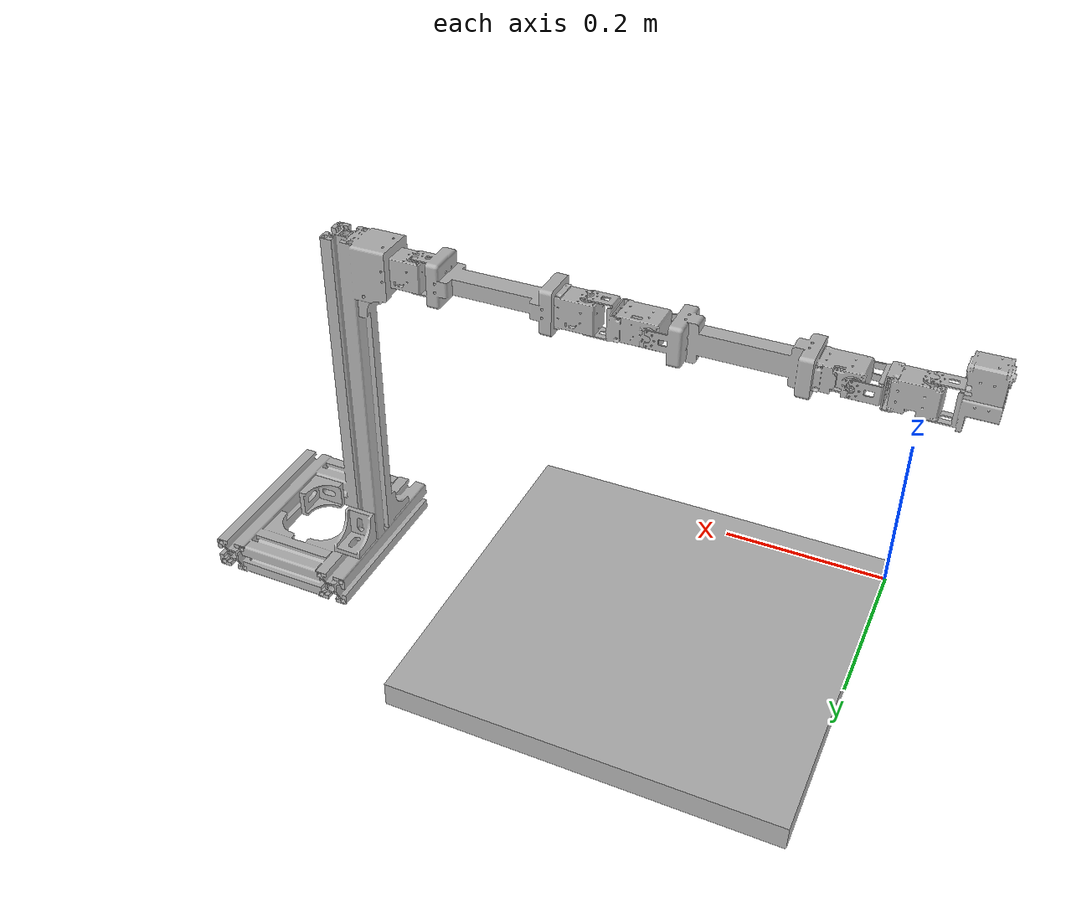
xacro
<?xml version="1.0" ?>
<robot name="joint1_v2_test" xmlns:xacro="http://www.ros.org/wiki/xacro">

<xacro:include filename="$(find joint1_v2_test_description)/urdf/materials.xacro" />
<xacro:include filename="$(find joint1_v2_test_description)/urdf/joint1_v2_test.trans" />
<xacro:include filename="$(find joint1_v2_test_description)/urdf/joint1_v2_test.gazebo" />
<link name="base_link">
  <inertial>
    <origin xyz="0.2767625784878296 0.2150000000670351 0.033213980218757516" rpy="0 0 0"/>
    <mass value="6.687868051572627"/>
    <inertia ixx="0.13023" iyy="0.258091" izz="0.310631" ixy="-0.0" iyz="-0.0" ixz="-0.035486"/>
  </inertial>
  <visual>
    <origin xyz="0 0 0" rpy="0 0 0"/>
    <geometry>
      <mesh filename="file://$(find joint1_v2_test_description)/meshes/base_link.stl" scale="0.001 0.001 0.001"/>
    </geometry>
    <material name="silver"/>
  </visual>
  <collision>
    <origin xyz="0 0 0" rpy="0 0 0"/>
    <geometry>
      <mesh filename="file://$(find joint1_v2_test_description)/meshes/base_link.stl" scale="0.001 0.001 0.001"/>
    </geometry>
  </collision>
</link>

<link name="joint2_v2_v1_1_1_1">
  <inertial>
    <origin xyz="-0.11791323673615445 -1.3340856197530115e-11 -0.018891220411172416" rpy="0 0 0"/>
    <mass value="0.15844726509442633"/>
    <inertia ixx="3.7e-05" iyy="0.000592" izz="0.000589" ixy="-0.0" iyz="-0.0" ixz="1e-06"/>
  </inertial>
  <visual>
    <origin xyz="-0.506 -0.215 -0.432" rpy="0 0 0"/>
    <geometry>
      <mesh filename="file://$(find joint1_v2_test_description)/meshes/joint2_v2_v1_1_1_1.stl" scale="0.001 0.001 0.001"/>
    </geometry>
    <material name="silver"/>
  </visual>
  <collision>
    <origin xyz="-0.506 -0.215 -0.432" rpy="0 0 0"/>
    <geometry>
      <mesh filename="file://$(find joint1_v2_test_description)/meshes/joint2_v2_v1_1_1_1.stl" scale="0.001 0.001 0.001"/>
    </geometry>
  </collision>
</link>

<link name="joint3_v2_v1_1_1">
  <inertial>
    <origin xyz="-0.05362762201670451 -0.0003453922728737513 -0.019000000042342924" rpy="0 0 0"/>
    <mass value="0.0499021828107056"/>
    <inertia ixx="9e-06" iyy="1.7e-05" izz="1.8e-05" ixy="-0.1" iyz="0.1" ixz="-0.1"/>
  </inertial>
  <visual>
    <origin xyz="-0.31125 -0.215 -0.432" rpy="0 0 0"/>
    <geometry>
      <mesh filename="file://$(find joint1_v2_test_description)/meshes/joint3_v2_v1_1_1.stl" scale="0.001 0.001 0.001"/>
    </geometry>
    <material name="silver"/>
  </visual>
  <collision>
    <origin xyz="-0.31125 -0.215 -0.432" rpy="0 0 0"/>
    <geometry>
      <mesh filename="file://$(find joint1_v2_test_description)/meshes/joint3_v2_v1_1_1.stl" scale="0.001 0.001 0.001"/>
    </geometry>
  </collision>
</link>

<link name="joint4_v2_v1_1">
  <inertial>
    <origin xyz="-0.11837720826506 0.02102354229057693 3.0597647283636675e-06" rpy="0 0 0"/>
    <mass value="0.15708361734063608"/>
    <inertia ixx="3.6e-05" iyy="0.000605" izz="0.000607" ixy="-2e-06" iyz="-0.1" ixz="0.1"/>
  </inertial>
  <visual>
    <origin xyz="-0.24275 -0.196 -0.413" rpy="0 0 0"/>
    <geometry>
      <mesh filename="file://$(find joint1_v2_test_description)/meshes/joint4_v2_v1_1.stl" scale="0.001 0.001 0.001"/>
    </geometry>
    <material name="silver"/>
  </visual>
  <collision>
    <origin xyz="-0.24275 -0.196 -0.413" rpy="0 0 0"/>
    <geometry>
      <mesh filename="file://$(find joint1_v2_test_description)/meshes/joint4_v2_v1_1.stl" scale="0.001 0.001 0.001"/>
    </geometry>
  </collision>
</link>

<link name="joint5_v2_v1_1">
  <inertial>
    <origin xyz="-0.05350802095667652 0.02050977005197102 0.0005816613300090312" rpy="0 0 0"/>
    <mass value="0.04853854037313522"/>
    <inertia ixx="9e-06" iyy="1.8e-05" izz="1.7e-05" ixy="0.1" iyz="0.1" ixz="0.1"/>
  </inertial>
  <visual>
    <origin xyz="-0.04425 -0.198898 -0.413" rpy="0 0 0"/>
    <geometry>
      <mesh filename="file://$(find joint1_v2_test_description)/meshes/joint5_v2_v1_1.stl" scale="0.001 0.001 0.001"/>
    </geometry>
    <material name="silver"/>
  </visual>
  <collision>
    <origin xyz="-0.04425 -0.198898 -0.413" rpy="0 0 0"/>
    <geometry>
      <mesh filename="file://$(find joint1_v2_test_description)/meshes/joint5_v2_v1_1.stl" scale="0.001 0.001 0.001"/>
    </geometry>
  </collision>
</link>

<link name="joint6_v2_v1_1">
  <inertial>
    <origin xyz="-0.0435171948215432 -0.00019854913444272704 0.00016085386451575312" rpy="0 0 0"/>
    <mass value="0.05714495248280274"/>
    <inertia ixx="2.1e-05" iyy="2.5e-05" izz="1.2e-05" ixy="-0.0" iyz="0.0" ixz="3e-06"/>
  </inertial>
  <visual>
    <origin xyz="0.02425 -0.219398 -0.432" rpy="0 0 0"/>
    <geometry>
      <mesh filename="file://$(find joint1_v2_test_description)/meshes/joint6_v2_v1_1.stl" scale="0.001 0.001 0.001"/>
    </geometry>
    <material name="silver"/>
  </visual>
  <collision>
    <origin xyz="0.02425 -0.219398 -0.432" rpy="0 0 0"/>
    <geometry>
      <mesh filename="file://$(find joint1_v2_test_description)/meshes/joint6_v2_v1_1.stl" scale="0.001 0.001 0.001"/>
    </geometry>
  </collision>
</link>

<joint name="joint1" type="revolute">
  <origin xyz="0.506 0.215 0.432" rpy="0 0 0"/>
  <parent link="base_link"/>
  <child link="joint2_v2_v1_1_1_1"/>
  <axis xyz="0 0 1" />
  <limit effort="300" velocity="0.1" lower="-3.14" upper="3.14"/>
</joint>

<joint name="joint2" type="revolute">
  <origin xyz="-0.19475 0.0 0.0" rpy="0 0 0"/>
  <parent link="joint2_v2_v1_1_1_1"/>
  <child link="joint3_v2_v1_1_1"/>
  <axis xyz="0 0 1" />
  <limit effort="300" velocity="0.1" lower="-3.14" upper="3.14"/>
</joint>

<joint name="joint3" type="revolute">
  <origin xyz="-0.0685 -0.019 -0.019" rpy="0 0 0"/>
  <parent link="joint3_v2_v1_1_1"/>
  <child link="joint4_v2_v1_1"/>
  <axis xyz="0 1 0" />
  <limit effort="300" velocity="0.1" lower="-3.14" upper="3.14"/>
</joint>

<joint name="joint4" type="revolute">
  <origin xyz="-0.1985 0.002898 0.0" rpy="0 0 0"/>
  <parent link="joint4_v2_v1_1"/>
  <child link="joint5_v2_v1_1"/>
  <axis xyz="0 1 0" />
  <limit effort="300" velocity="0.1" lower="-3.14" upper="3.14"/>
</joint>

<joint name="joint5" type="revolute">
  <origin xyz="-0.0685 0.0205 0.019" rpy="0 0 0"/>
  <parent link="joint5_v2_v1_1"/>
  <child link="joint6_v2_v1_1"/>
  <axis xyz="0 0 1" />
  <limit effort="300" velocity="0.1" lower="-3.14" upper="3.14"/>
</joint>

</robot>

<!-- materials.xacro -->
<robot name="joint1_v2_test" xmlns:xacro="http://www.ros.org/wiki/xacro" >

<material name="silver">
  <color rgba="0.700 0.700 0.700 1.000"/>
</material>

</robot>

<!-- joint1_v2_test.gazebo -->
<robot name="joint1_v2_test" xmlns:xacro="http://www.ros.org/wiki/xacro" >

<xacro:property name="body_color" value="Gazebo/Silver" />

<gazebo>
  <plugin name="control" filename="libgazebo_ros_control.so"/>
</gazebo>
<gazebo reference="base_link">
  <material>${body_color}</material>
  <mu1>0.2</mu1>
  <mu2>0.2</mu2>
  <self_collide>true</self_collide>
  <gravity>true</gravity>
</gazebo>

<gazebo reference="joint2_v2_v1_1_1_1">
  <material>${body_color}</material>
  <mu1>0.2</mu1>
  <mu2>0.2</mu2>
  <self_collide>true</self_collide>
</gazebo>

<gazebo reference="joint3_v2_v1_1_1">
  <material>${body_color}</material>
  <mu1>0.2</mu1>
  <mu2>0.2</mu2>
  <self_collide>true</self_collide>
</gazebo>

<gazebo reference="joint4_v2_v1_1">
  <material>${body_color}</material>
  <mu1>0.2</mu1>
  <mu2>0.2</mu2>
  <self_collide>true</self_collide>
</gazebo>

<gazebo reference="joint5_v2_v1_1">
  <material>${body_color}</material>
  <mu1>0.2</mu1>
  <mu2>0.2</mu2>
  <self_collide>true</self_collide>
</gazebo>

<gazebo reference="joint6_v2_v1_1">
  <material>${body_color}</material>
  <mu1>0.2</mu1>
  <mu2>0.2</mu2>
  <self_collide>true</self_collide>
</gazebo>

</robot>
